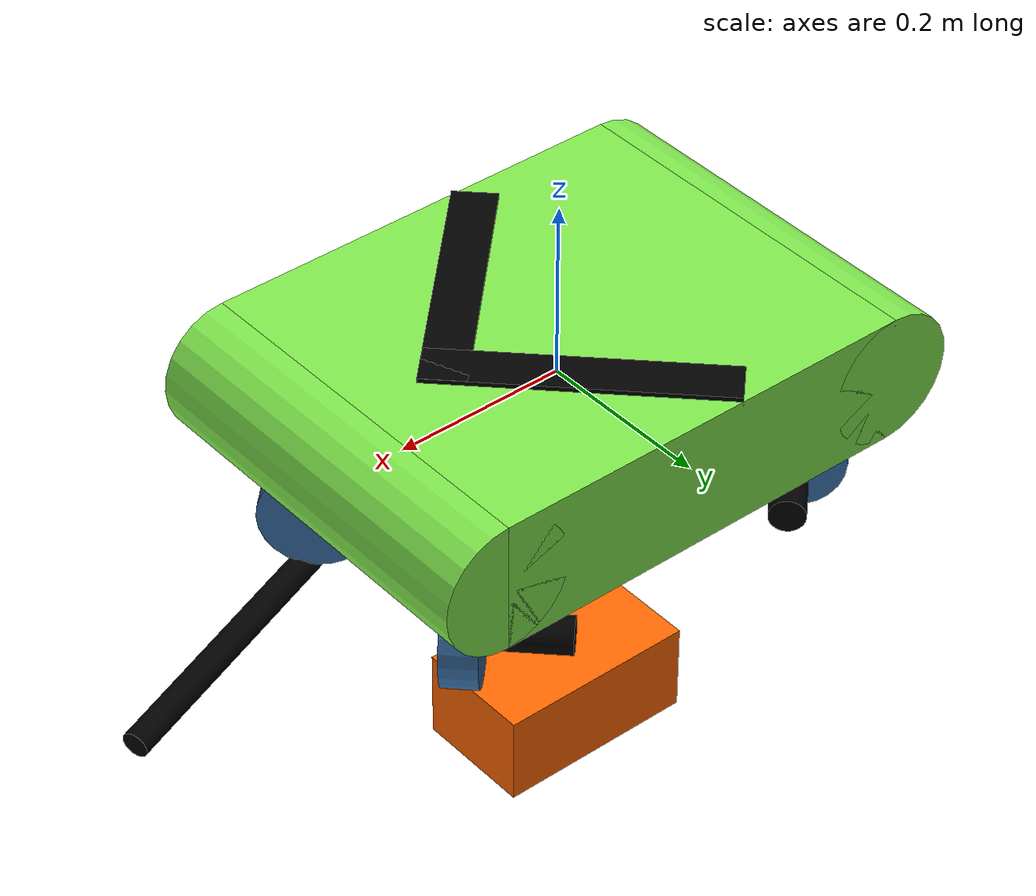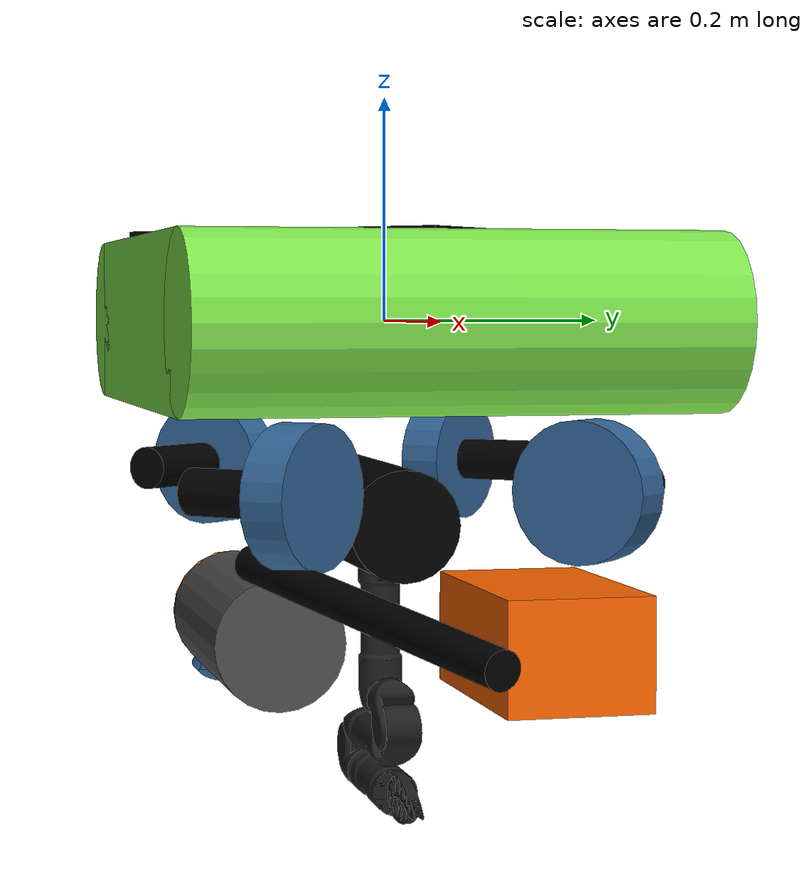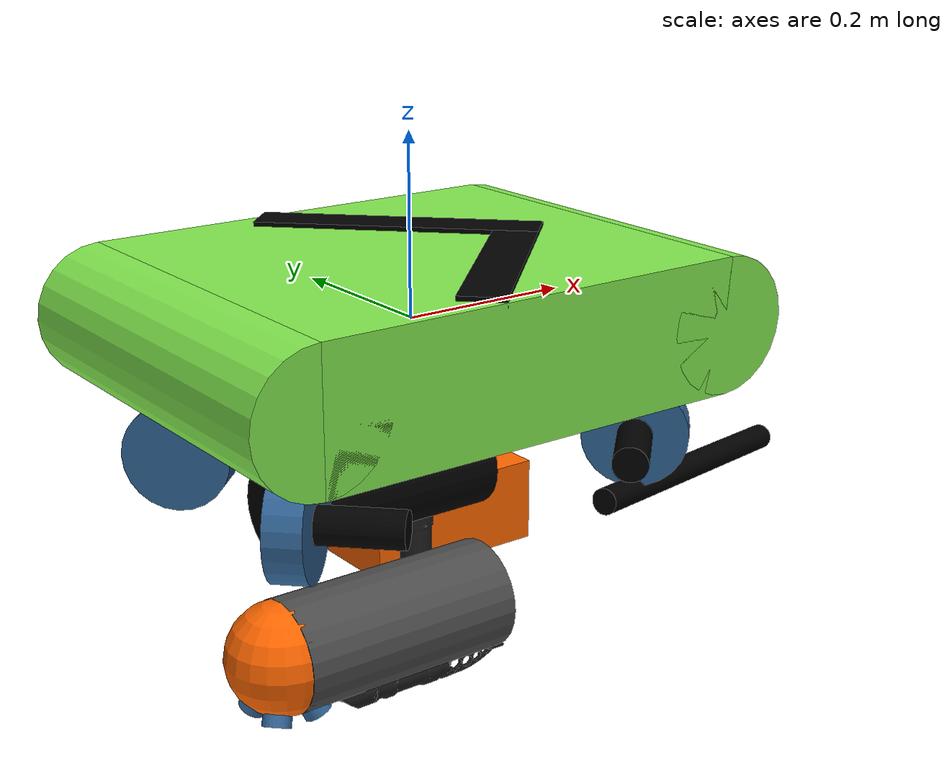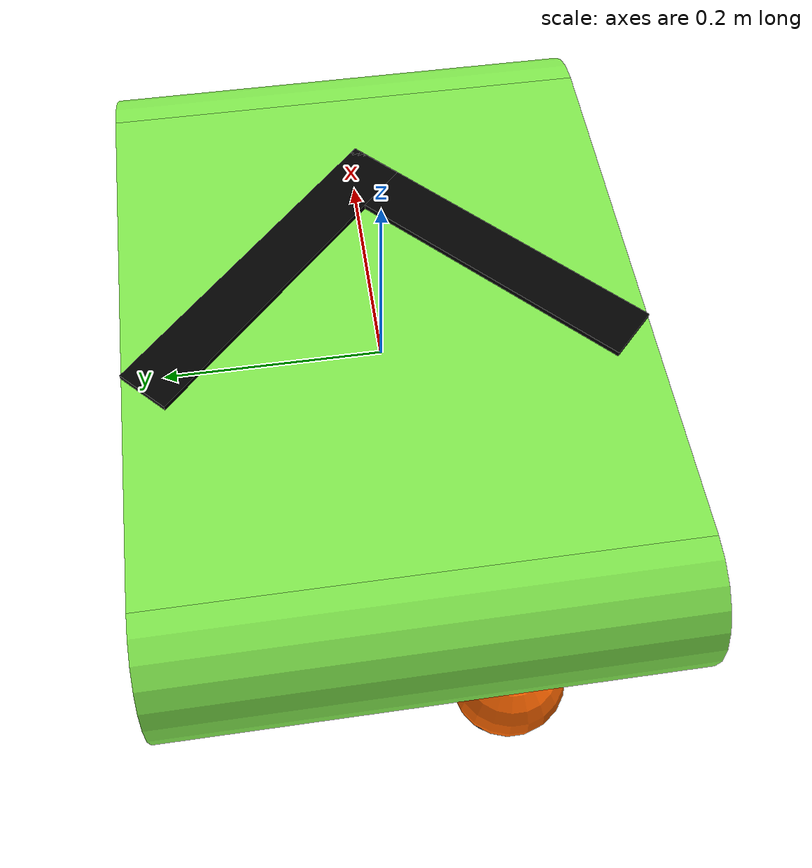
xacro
<?xml version="1.0"?>
<!-- Testing out making an xacro with the vehicle and arm together
without any uuv simulator dependencies -->

<robot name="seabotix_alpha" xmlns:xacro="http://www.ros.org/wiki/xacro">

  <!--
    Vehicle's parameters (remember to enter the model parameters below)
  -->

  <xacro:property name="mass" value="0"/>
  <!-- Center of gravity -->
  <xacro:property name="cog" value="0 0 0"/>
  <!-- Fluid density -->
  <xacro:property name="rho" value="1028"/>

<!-- Vehicle ~ 0.6096 m (2ft) x 0.4445 (17.5in) x 0.4572 (18in)-->
  <xacro:property name="length" value="0.625"/>
  <xacro:property name="width" value="0.4572"/>
  <xacro:property name="height" value="0.4572"/>

  <!-- The namespace_arm for the seabotix alpha arm -->
  <xacro:property name="namespace_vehicle" value="seabotix"/>
  <xacro:property name="namespace_arm" value="${namespace_vehicle}/alpha"/>

  <!-- We do not have different visual and collision files, as we define them directly in the URDF
       using primitive shapes.
  -->

  <!-- Vehicle macro -->

    <link name="base_link">
        <inertial>
        <mass value="${mass}" />
        <origin xyz="${cog}" rpy="0 0 0"/>
        <inertia ixx="0" ixy="0" ixz="0"
                iyy="0" iyz="0"
                izz="0" />
        </inertial>
    </link>
    <link name="world_link_x">
        <inertial>
        <mass value="0" />
        <origin xyz="${cog}" rpy="0 0 0"/>
        <inertia ixx="0" ixy="0" ixz="0"
                iyy="0" iyz="0"
                izz="0" />
        </inertial>
    </link>
    <link name="world_link_y">
        <inertial>
        <mass value="0" />
        <origin xyz="${cog}" rpy="0 0 0"/>
        <inertia ixx="0" ixy="0" ixz="0"
                iyy="0" iyz="0"
                izz="0" />
        </inertial>
    </link>
    <link name="world_link_z">
        <inertial>
        <mass value="0" />
        <origin xyz="${cog}" rpy="0 0 0"/>
        <inertia ixx="0" ixy="0" ixz="0"
                iyy="0" iyz="0"
                izz="0" />
        </inertial>
    </link>
    <link name="world_link_roll">
        <inertial>
        <mass value="0" />
        <origin xyz="${cog}" rpy="0 0 0"/>
        <inertia ixx="0" ixy="0" ixz="0"
                iyy="0" iyz="0"
                izz="0" />
        </inertial>
    </link>
    <link name="world_link_pitch">
        <inertial>
        <mass value="0" />
        <origin xyz="${cog}" rpy="0 0 0"/>
        <inertia ixx="0" ixy="0" ixz="0"
                iyy="0" iyz="0"
                izz="0" />
        </inertial>
    </link>

      <!-- Rigid body description of the base link -->
      <link name="world_link_yaw">
        <!--
          Be careful to setup the coefficients for the inertial tensor,
          otherwise your model will become unstable on Gazebo
        -->
        <inertial>
          <mass value="${mass}" />
          <origin xyz="${cog}" rpy="0 0 0"/>
          <inertia ixx="0" ixy="0" ixz="0"
                   iyy="0" iyz="0"
                   izz="0" />
        </inertial>

      </link>

      <!-- robot name="OSU vLBV300 Volturnus" -->
      <xacro:property name="deg2rad" value="${pi/180}" />

      <!-- Without trig, angles are a pain in the arse. Beam angle 30 -->
      <xacro:property name="dvl_beam_angle" value="${30/180*pi}" />
      <xacro:property name="dvl_pitch" value="0.361367" />
      <xacro:property name="dvl_yaw" value="0.387597" />

      <material name="green_v">
        <color rgba="0.5 0.9 0.3 1"/>
      </material>
      <material name="black_v">
        <color rgba="0 0 0 1"/>
      </material>
      <material name="red_v">
        <color rgba="1 0 0 1"/>
      </material>
      <material name="blue_v">
        <color rgba="0.2 0.4 0.6 1" />
      </material>
      <material name="grey_v">
        <color rgba=".3 .3 .3 1"/>
      </material>
      <material name="orange_v">
        <color rgba="1 .4 0 1" />
      </material>

      <link name="vehicle_base_link">
        <visual>
          <geometry>
            <box size="0.5 0.45 0.15"/>
          </geometry>
          <material name="green_v"/>
        </visual>
      </link>

      <link name="front_bumper">
        <visual>
          <geometry>
            <cylinder length="0.45" radius="0.075"/>
          </geometry>
          <material name="green_v"/>
        </visual>
      </link>
      <joint name="fbump_link" type="fixed">
        <parent link="vehicle_base_link"/>
        <child link="front_bumper"/>
        <origin rpy="${pi/2} 0 0" xyz="0.25 0 0"/>
      </joint>

      <link name="rear_bumper">
        <visual>
          <geometry>
            <cylinder length="0.45" radius="0.075"/>
          </geometry>
          <material name="green_v"/>
        </visual>
      </link>
      <joint name="rbump_link" type="fixed">
        <parent link="vehicle_base_link"/>
        <child link="rear_bumper"/>
        <origin rpy="${pi/2} 0 0" xyz="-0.25 0 0"/>
      </joint>

      <link name="l_arrow">
        <visual>
          <geometry>
            <box size="0.05 0.318 0.01"/>
          </geometry>
          <material name="black_v"/>
        </visual>
      </link>
      <joint name="l_arrow_link" type="fixed">
        <parent link="vehicle_base_link"/>
        <child link="l_arrow"/>
        <origin rpy="0 0 ${pi/4}" xyz="0.05 0.095 0.075"/>
      </joint>

      <link name="r_arrow">
        <visual>
          <geometry>
            <box size="0.05 0.318 0.01"/>
          </geometry>
          <material name="black_v"/>
        </visual>
      </link>
      <joint name="r_arrow_link" type="fixed">
        <parent link="vehicle_base_link"/>
        <child link="r_arrow"/>
        <origin rpy="0 0 ${-pi/4}" xyz="0.05 -0.095 0.075"/>
      </joint>

      <link name="sf_fan">
        <visual>
          <geometry>
            <cylinder length="0.04" radius="0.06"/>
          </geometry>
          <material name="blue_v"/>
        </visual>
      </link>
      <joint name="base_to_sf_fan" type="fixed">
        <parent link="vehicle_base_link"/>
        <child link="sf_fan"/>
        <origin rpy="0 ${pi/2} 0.785" xyz="0.22 -0.12 -0.14"/>
      </joint>
      <link name="sf_thruster">
        <visual>
          <geometry>
            <cylinder length="0.1" radius="0.02"/>
          </geometry>
          <material name="black_v"/>
        </visual>
      </link>
      <joint name="sf_fan_thruster_joint" type="fixed">
        <parent link="sf_fan"/>
        <child link="sf_thruster"/>
        <origin xyz="0 0 -0.06"/>
      </joint>

      <link name="pf_fan">
        <visual>
          <geometry>
            <cylinder length="0.04" radius="0.06"/>
          </geometry>
          <material name="blue_v"/>
        </visual>
      </link>
      <joint name="base_to_pf_fan" type="fixed">
        <parent link="vehicle_base_link"/>
        <child link="pf_fan"/>
        <origin rpy="0 ${pi/2} -0.785" xyz="0.22 0.12 -0.14"/>
      </joint>
      <link name="pf_thruster">
        <visual>
          <geometry>
            <cylinder length="0.1" radius="0.02"/>
          </geometry>
          <material name="black_v"/>
        </visual>
      </link>
      <joint name="pf_fan_thruster_joint" type="fixed">
        <parent link="pf_fan"/>
        <child link="pf_thruster"/>
        <origin xyz="0 0 -0.06"/>
      </joint>

      <link name="sa_fan">
        <visual>
          <geometry>
            <cylinder length="0.04" radius="0.06"/>
          </geometry>
          <material name="blue_v"/>
        </visual>
      </link>
      <joint name="base_to_sa_fan" type="fixed">
        <parent link="vehicle_base_link"/>
        <child link="sa_fan"/>
        <origin rpy="0 ${-pi/2} -0.785" xyz="-0.22 -0.12 -0.14"/>
      </joint>
      <link name="sa_thruster">
        <visual>
          <geometry>
            <cylinder length="0.1" radius="0.02"/>
          </geometry>
          <material name="black_v"/>
        </visual>
      </link>
      <joint name="sa_fan_thruster_joint" type="fixed">
        <parent link="sa_fan"/>
        <child link="sa_thruster"/>
        <origin xyz="0 0 -0.06"/>
      </joint>

      <link name="pa_fan">
        <visual>
          <geometry>
            <cylinder length="0.04" radius="0.06"/>
          </geometry>
          <material name="blue_v"/>
        </visual>
      </link>
      <joint name="base_to_pa_fan" type="fixed">
        <parent link="vehicle_base_link"/>
        <child link="pa_fan"/>
        <origin rpy="0 -${pi/2} 0.785" xyz="-0.22 0.12 -0.14"/>
      </joint>
      <link name="pa_thruster">
        <visual>
          <geometry>
            <cylinder length="0.1" radius="0.02"/>
          </geometry>
          <material name="black_v"/>
        </visual>
      </link>
      <joint name="pa_fan_thruster_joint" type="fixed">
        <parent link="pa_fan"/>
        <child link="pa_thruster"/>
        <origin xyz="0 0 -0.06"/>
      </joint>

      <link name="seabotix_bottle">
        <visual>
          <geometry>
            <cylinder length="0.26" radius="0.05"/>
          </geometry>
          <material name="black_v"/>
        </visual>
      </link>
      <joint name="sbottle_link" type="fixed">
        <parent link="vehicle_base_link"/>
        <child link="seabotix_bottle"/>
        <origin rpy="0 ${pi/2} 0" xyz="-0.05 0 -0.18"/>
      </joint>

      <link name="dvl">
        <visual>
          <geometry>
            <cylinder length="0.25" radius="0.06"/>
          </geometry>
          <material name="grey_v"/>
          <origin rpy="0 ${pi/2} 0" xyz="-0.125 0 0"/>
        </visual>
      </link>
      <joint name="dvl_link" type="fixed">
        <parent link="vehicle_base_link"/>
        <child link="dvl"/>
        <origin rpy="0 0 ${pi}" xyz="-0.23 -0.1 -0.29"/>
      </joint>

      <link name="dvl_head">
        <visual>
          <geometry>
            <sphere radius="0.06"/>
          </geometry>
          <material name="orange_v"/>
        </visual>
      </link>
      <joint name="dvl_head_link" type="fixed">
        <parent link="dvl"/>
        <child link="dvl_head"/>
        <origin rpy="0 0 ${-45*deg2rad}" xyz="0 0 0"/>
      </joint>

      <link name="dvl_altitude"/>
      <joint name="dvl_altitude_link" type="fixed">
        <parent link="dvl_head"/>
        <child link="dvl_altitude"/>
        <origin rpy="0 ${pi/2} 0" xyz="0 0 0"/>
      </joint>

      <link name="dvl_beam1">
        <visual>
          <geometry>
            <cylinder length="0.07" radius="0.015"/>
          </geometry>
          <origin rpy="0 ${pi/2} 0" xyz="0.035 0 0"/>
          <material name="blue_v"/>
        </visual>
      </link>
      <joint name="dvl_beam1_link" type="fixed">
        <parent link="dvl_head"/>
        <child link="dvl_beam1"/>
        <origin rpy="0 ${pi/2-dvl_beam_angle} ${pi/2}" xyz="0 0 0"/>
      </joint>

      <link name="dvl_beam2">
        <visual>
          <geometry>
            <cylinder length="0.07" radius="0.015"/>
          </geometry>
          <origin rpy="0 ${pi/2} 0" xyz="0.035 0 0"/>
          <material name="blue_v"/>
        </visual>
      </link>
      <joint name="dvl_beam2_link" type="fixed">
        <parent link="dvl_head"/>
        <child link="dvl_beam2"/>
        <origin rpy="0 ${pi/2-dvl_beam_angle} -${pi/2}" xyz="0 0 0"/>
      </joint>

      <link name="dvl_beam3">
        <visual>
          <geometry>
            <cylinder length="0.07" radius="0.015"/>
          </geometry>
          <origin rpy="0 ${pi/2} 0" xyz="0.035 0 0"/>
          <material name="blue_v"/>
        </visual>
      </link>
      <joint name="dvl_beam3_link" type="fixed">
        <parent link="dvl_head"/>
        <child link="dvl_beam3"/>
        <origin rpy="0 ${pi/2-dvl_beam_angle} 0" xyz="0 0 0"/>
      </joint>

      <link name="dvl_beam4">
        <visual>
          <geometry>
            <cylinder length="0.07" radius="0.015"/>
          </geometry>
          <origin rpy="0 ${pi/2} 0" xyz="0.035 0 0"/>
          <material name="blue_v"/>
        </visual>
      </link>
      <joint name="dvl_beam4_link" type="fixed">
        <parent link="dvl_head"/>
        <child link="dvl_beam4"/>
        <origin rpy="0 ${pi/2-dvl_beam_angle} ${pi}" xyz="0 0 0"/>
      </joint>

      <link name="sonar">
        <visual>
          <geometry>
            <box size="0.22 0.13 0.1"/>
          </geometry>
          <material name="orange_v"/>
        </visual>
      </link>
      <joint name="sonar_link" type="fixed">
        <parent link="vehicle_base_link"/>
        <child link="sonar"/>
        <origin xyz="0.1 0.12 -0.28"/>
      </joint>

      <link name="gripper_pole">
        <visual>
          <geometry>
            <cylinder length="0.38" radius="0.015"/>
          </geometry>
          <origin rpy="0 ${pi/2} 0" xyz="0.19 0 0"/>
          <material name="black_v"/>
        </visual>
      </link>
      <joint name="gripper_pole_link" type="fixed">
        <parent link="vehicle_base_link"/>
        <child link="gripper_pole"/>
        <origin rpy="0 0.1 0.3" xyz="0.15 -0.15 -0.2"/>
      </joint>

<!-- Reach 5 Arm -->
  <link name="${namespace_arm}/base_link">
    <visual>
      <geometry>
	<mesh filename="package://reach_system_one_support/meshes/reach5mini/visual/Base.stl" />
      </geometry>
      <origin rpy="0 0 0" xyz="0 0 0"/>
      <material name="black"/>
    </visual>
    <collision>
      <geometry>
        <cylinder length="0.150" radius="0.020"/>
      </geometry>
      <origin rpy="0 1.57075 0" xyz="-0.075 0 0"/>
    </collision>
    <inertial>
      <mass value="0.341"/>
      <origin xyz="-0.075 -0.006 -0.003"/>
      <inertia ixx="0.000099" ixy="0.000139" ixz="0.000115" iyy="0.002920" iyz="0.000003" izz="0.002934"/>
    </inertial>
  </link>

  <link name="${namespace_arm}/shoulder_link">
    <visual>
      <geometry>
        <mesh filename="package://reach_system_one_support/meshes/reach5mini/visual/ShoulderJoint.stl" />
      </geometry>
      <material name="black"/>
      <origin rpy="0 0 -1.57075" xyz="0 0 0"/>
    </visual>
    <collision>
      <geometry>
        <cylinder length="0.066" radius="0.020"/>
      </geometry>
      <origin rpy="0 0 0" xyz="0 0 0.010"/>
    </collision>
    <inertial>
      <mass value="0.194"/>
      <origin xyz="0.005 -0.001 0.016"/>
      <inertia ixx="0.000189" ixy="0.000005" ixz="0.000054" iyy="0.000213" iyz="0.000003" izz="0.000067"/>
    </inertial>
  </link>

  <link name="${namespace_arm}/upper_arm_link">
    <visual>
      <geometry>
        <mesh filename="package://reach_system_one_support/meshes/reach5mini/visual/UpperArm.stl" />
      </geometry>
      <origin rpy="0 -1.57075 -0.2655555" xyz="0 0 -0.075"/>
      <material name="black"/>
    </visual>
    <collision>
      <geometry>
        <cylinder length="0.1445" radius="0.020"/>
      </geometry>
      <origin rpy="0 1.57075 -0.27075" xyz="0.075 0 0"/>
    </collision>
    <collision>
      <geometry>
        <cylinder length="0.040" radius="0.020"/>
      </geometry>
      <origin rpy="0 0 0" xyz="0 0 0"/>
    </collision>
    <inertial>
      <mass value="0.429"/>
      <origin xyz="0.073 0.0 0.0"/>
      <inertia ixx="0.000087" ixy="-0.000076" ixz="-0.000010" iyy="0.003190" iyz="0.000000" izz="0.003213"/>
    </inertial>
  </link>

  <link name="${namespace_arm}/forearm_link">
    <visual>
      <geometry>
        <mesh filename="package://reach_system_one_support/meshes/reach5mini/visual/ForearmJoint.stl" />
      </geometry>
      <origin rpy="0 0 0" xyz="0 0 0"/>
      <material name="black"/>
    </visual>
    <collision>
      <geometry>
        <cylinder length="0.040" radius="0.020"/>
      </geometry>
      <origin rpy="0 0 0" xyz="0 0 0"/>
    </collision>
    <inertial>
      <mass value="0.115"/>
      <origin xyz="0.017 -0.026 -0.002"/>
      <inertia ixx="0.000120" ixy="-0.000061" ixz="-0.000001" iyy="0.000062" iyz="0.000000" izz="0.000156"/>
    </inertial>
  </link>

  <link name="${namespace_arm}/wrist_link">
    <visual>
      <geometry>
        <mesh filename="package://reach_system_one_support/meshes/reach5mini/visual/Wrist.stl" />
      </geometry>
      <origin rpy="0 0 0" xyz="0 0 0"/>
      <material name="black"/>
    </visual>
    <collision>
      <geometry>
        <cylinder length="0.140" radius="0.020"/>
      </geometry>
      <origin rpy="0 0 0" xyz="0 0 -0.070"/>
    </collision>
    <inertial>
      <mass value="0.333"/>
      <origin xyz="0.0 0.003 -0.098"/>
      <inertia ixx="0.003709" ixy="-0.000002" ixz="-0.000004" iyy="0.003734" iyz="0.000000" izz="0.000079"/>
    </inertial>
  </link>

  <link name="${namespace_arm}/tip">
  </link>

  <link name="${namespace_arm}/jaw1">
    <visual>
      <geometry>
      	<mesh filename="package://reach_system_one_support/meshes/reach5mini/visual/Jaw1.stl" />
      </geometry>
      <origin rpy="0 0 0" xyz="0 0 0"/>
      <material name="black"/>
    </visual>
    <collision>
      <geometry>
        <box size="0.03 0.09 0.01"/>
      </geometry>
      <origin rpy="0 0 0" xyz="-0.01 -0.045 0"/>
    </collision>
  </link>

  <link name="${namespace_arm}/jaw2">
    <visual>
      <geometry>
      	<mesh filename="package://reach_system_one_support/meshes/reach5mini/visual/Jaw2.stl" />
      </geometry>
      <origin rpy="0 0 0" xyz="0 0 0"/>
      <material name="black"/>
    </visual>
    <collision>
      <geometry>
        <box size="0.03 0.09 0.01"/>
      </geometry>
      <origin rpy="0 0 0" xyz="0.01 -0.045 0"/>
    </collision>
  </link>

  <joint name="${namespace_arm}/joint1" type="revolute">
    <parent link="${namespace_arm}/base_link"/>
    <child link="${namespace_arm}/shoulder_link"/>
    <origin xyz="0 0 0" rpy="0 0 0"/>
    <axis xyz="0 0 1"/>
    <limit effort="9.0" lower="-${pi}" upper = "${pi}" velocity="0.5"/>
  </joint>

  <joint name="${namespace_arm}/joint2" type="revolute">
    <parent link="${namespace_arm}/shoulder_link"/>
    <child link="${namespace_arm}/upper_arm_link"/>
    <origin xyz="0.020 0 0.046" rpy="1.57075 1.3 0"/>
    <axis xyz="0 0 1"/>
    <limit effort="9.0" lower="0.0" upper = "3.5" velocity="0.5"/>
  </joint>

  <joint name="${namespace_arm}/joint3" type="revolute">
    <parent link="${namespace_arm}/upper_arm_link"/>
    <child link="${namespace_arm}/forearm_link"/>
    <origin xyz="0.15 0 0" rpy="3.1415 0 1.3"/>
    <axis xyz="0 0 1"/>
    <limit effort="9.0" lower="0.0" upper = "3.5" velocity="0.5"/>
  </joint>

  <joint name="${namespace_arm}/joint4" type="revolute">
    <parent link="${namespace_arm}/forearm_link"/>
    <child link="${namespace_arm}/wrist_link"/>
    <origin xyz="0.020 0 0" rpy="-1.57075 0 0"/>
    <axis xyz="0 0 1"/>
            <limit effort="5.0" lower="${-pi}" upper = "${pi}" velocity="1.0"/>
  </joint>

  <joint name="${namespace_arm}/joint5" type="revolute">
    <parent link="${namespace_arm}/wrist_link"/>
    <child link="${namespace_arm}/jaw1"/>
    <origin xyz="0.015 0 -0.140" rpy="1.57075 0 0"/>
    <axis xyz="0 0 1"/>
    <limit effort="5.0" lower="0.0" upper = "0.5" velocity="0.5"/>
  </joint>

  <joint name="${namespace_arm}/joint6" type="revolute">
    <parent link="${namespace_arm}/wrist_link"/>
    <child link="${namespace_arm}/jaw2"/>
    <origin xyz="-0.015 0 -0.140" rpy="1.57075 0 0"/>
    <axis xyz="0 0 -1"/>
    <limit effort="5.0" lower="0.0" upper = "0.5" velocity="0.5"/>
  </joint>

  <joint name="${namespace_arm}/arm_to_tip" type="fixed">
    <parent link="${namespace_arm}/wrist_link"/>
    <child link="${namespace_arm}/tip"/>
    <origin xyz="0 0 -0.180" rpy="0 1.57075 0"/>
  </joint>

    <joint name="x_displacement" type="prismatic">
      <parent link="base_link"/>
      <child link="world_link_x"/>
      <origin rpy="0 0 0" xyz="0 0 0"/>
      <axis xyz="1 0 0"/>
      <limit effort="100" velocity="0.5" lower="-10" upper="10" /> <!-- Assume we are operating in 20x20x20m cube-->
    </joint>

    <joint name="y_displacement" type="prismatic">
      <parent link="world_link_x"/>
      <child link="world_link_y"/>
      <origin rpy="0 0 0" xyz="0 0 0"/>
      <axis xyz="0 1 0"/>
      <limit effort="100" velocity="0.5" lower="-10" upper="10" /> <!-- Assume we are operating in 20x20x20m cube-->
    </joint>

    <joint name="z_displacement" type="prismatic">
      <parent link="world_link_y"/>
      <child link="world_link_z"/>
      <origin rpy="0 0 0" xyz="0 0 0"/>
      <axis xyz="0 0 1"/>
      <limit effort="100" velocity="0.5" lower="-10" upper="10" /> <!-- Assume we are operating in 20x20x20m cube-->
    </joint>

    <joint name="roll_displacement" type="fixed">
      <parent link="world_link_z"/>
      <child link="world_link_roll"/>
      <origin rpy="0 0 0" xyz="0 0 0"/>
      <!-- Assume we can roll by pi/2-->
    </joint>

    <joint name="pitch_displacement" type="fixed">
      <parent link="world_link_roll"/>
      <child link="world_link_pitch"/>
      <origin rpy="0 0 0" xyz="0 0 0"/>
      <axis xyz="0 1 0"/>
      <!-- Assume we can pitch by pi/2-->
    </joint>

    <joint name="yaw_displacement" type="continuous">
      <parent link="world_link_pitch"/>
      <child link="world_link_yaw"/>
      <origin rpy="0 0 0" xyz="0 0 0"/>
      <axis xyz="0 0 1"/>
      <limit effort="100" velocity="${pi/10}"/> <!-- Assume we have no limit on yaw-->
    </joint>

    <!-- Add a link attaching the vehicle to the world base link -->
    <joint name="joint_vehicle_base_world" type="fixed">
      <parent link="world_link_yaw"/>
      <child link="vehicle_base_link"/>
      <origin rpy="0 0 0" xyz="0 0 0"/>
    </joint>

    <!-- Add a link attaching the arm to the world base link -->
    <joint name="joint_arm_vehicle" type="fixed">
      <parent link="vehicle_base_link"/>
      <child link="${namespace_arm}/base_link"/>
      <origin xyz="0.0 0 -${3*height/4}" rpy="0 ${pi/2} 0"/>
    </joint>

    <gazebo reference="world_link_yaw">
      <selfCollide>false</selfCollide>
    </gazebo>

    <!-- Set up hydrodynamic plugin given as input parameter -->

    <!-- Include the thruster modules -->

    <!-- Include the sensor modules -->

</robot>
